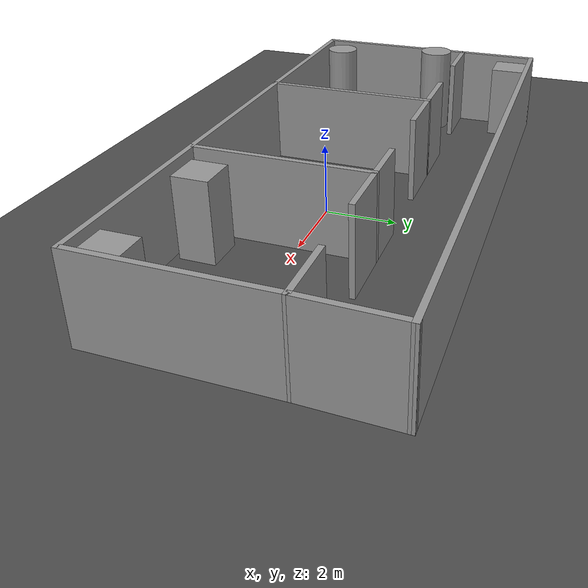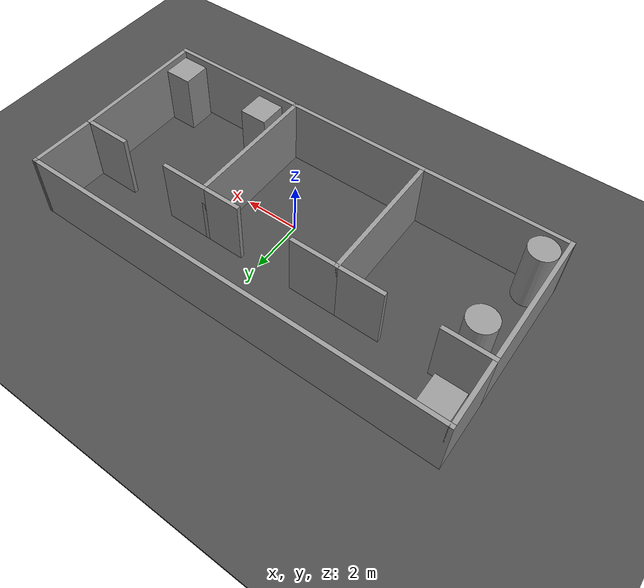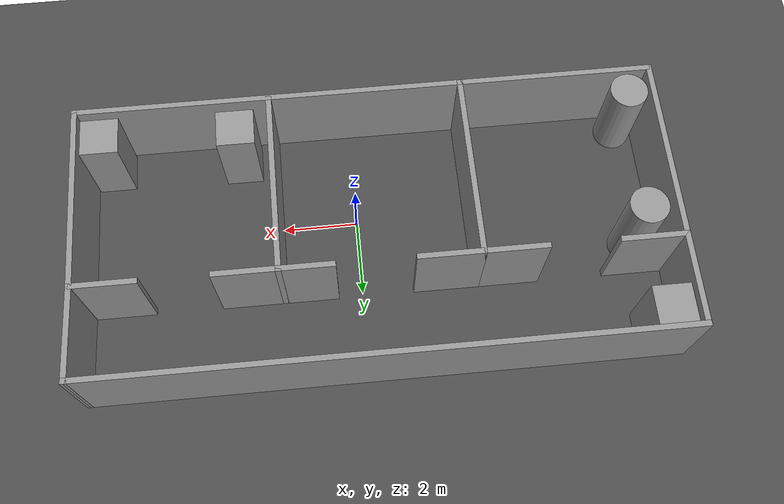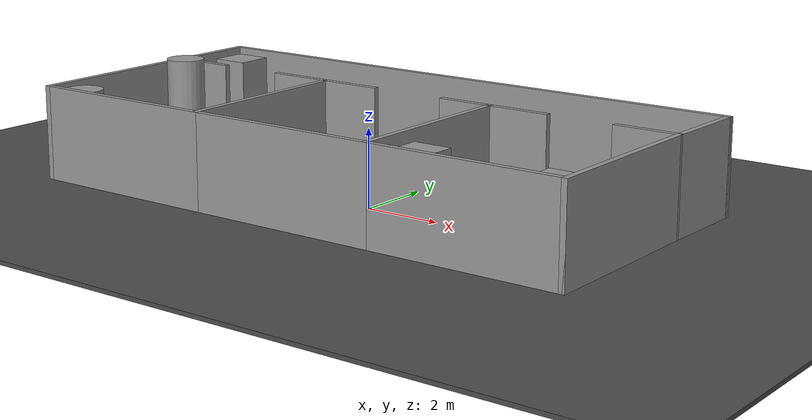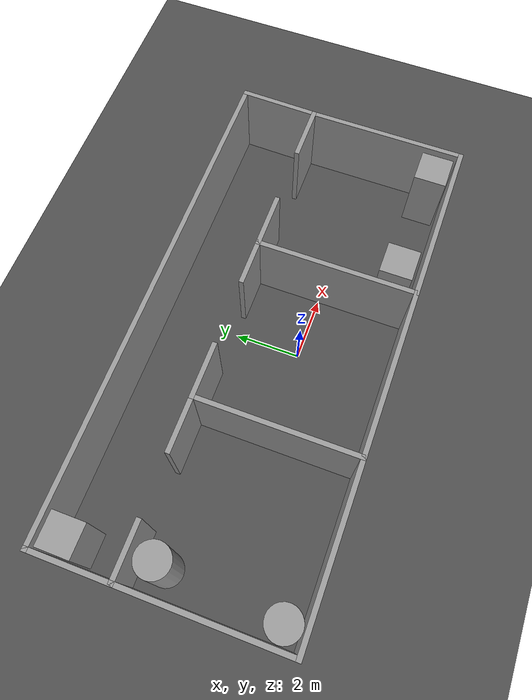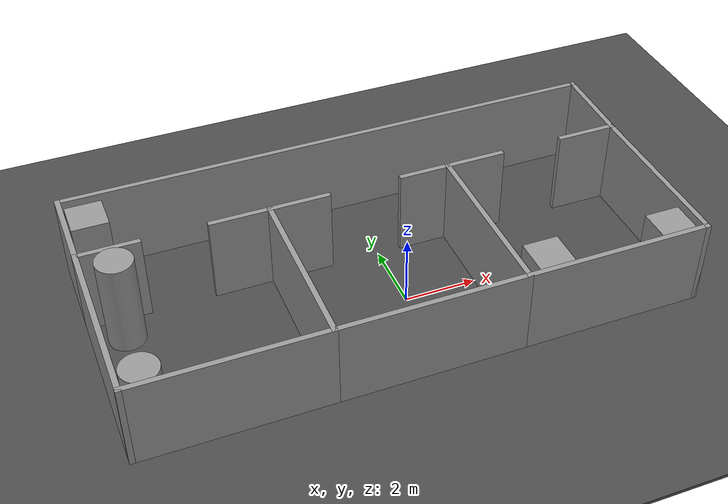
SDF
<sdf version="1.7">
 <world name="default">
  <light name="sun" type="directional">
   <pose>0 0 10 0 -0 0</pose>
   <diffuse>0.8 0.8 0.8 1</diffuse>
   <specular>0.2 0.2 0.2 1</specular>
   <attenuation>
    <range>1000</range>
    <constant>0.9</constant>
    <linear>0.01</linear>
    <quadratic>0.001</quadratic>
   </attenuation>
   <direction>-0.5 0.1 -0.9</direction>
   <spot><inner_angle>0</inner_angle><outer_angle>0</outer_angle><falloff>0</falloff></spot>
  </light>
  <model name="ground_plane">
   <static>1</static>
   <link name="link">
    <collision name="collision">
     <geometry><plane><normal>0 0 1</normal><size>100 100</size></plane></geometry>
     <surface><friction><ode><mu>100</mu><mu2>50</mu2></ode></friction></surface>
    </collision>
    <visual name="visual">
     <cast_shadows>0</cast_shadows>
     <geometry><plane><normal>0 0 1</normal><size>100 100</size></plane></geometry>
     <material>
      <script><uri>file://media/materials/scripts/gazebo.material</uri><name>Gazebo/Grey</name></script>
     </material>
    </visual>
   </link>
  </model>
  <model name="asphalt_plane">
   <static>1</static>
   <link name="link">
    <collision name="collision"><geometry><box><size>200 200 0.1</size></box></geometry></collision>
    <visual name="visual">
     <cast_shadows>0</cast_shadows>
     <geometry><box><size>200 200 0.1</size></box></geometry>
     <material>
      <script>
       <uri>model://asphalt_plane/materials/scripts</uri>
       <uri>model://asphalt_plane/materials/textures</uri>
       <name>vrc/asphalt</name>
      </script>
     </material>
    </visual>
   </link>
  </model>
  <physics name="default_physics" default="0" type="ode">
   <ode>
    <solver>
     <type>quick</type>
     <iters>10</iters>
     <sor>1.3</sor>
     <use_dynamic_moi_rescaling>0</use_dynamic_moi_rescaling>
    </solver>
    <constraints>
     <cfm>0</cfm>
     <erp>0.2</erp>
     <contact_max_correcting_vel>100</contact_max_correcting_vel>
     <contact_surface_layer>0.001</contact_surface_layer>
    </constraints>
   </ode>
   <max_step_size>0.004</max_step_size>
   <real_time_factor>1</real_time_factor>
   <real_time_update_rate>250</real_time_update_rate>
  </physics>
  <model name="Office">
   <pose>-0.45743 0.807928 0 0 -0 0</pose>
   <link name="Wall_18">
    <collision name="Wall_18_Collision">
     <geometry><box><size>5 0.15 2.5</size></box></geometry>
     <pose>0 0 1.25 0 -0 0</pose>
    </collision>
    <visual name="Wall_18_Visual">
     <pose>0 0 1.25 0 -0 0</pose>
     <geometry><box><size>5 0.15 2.5</size></box></geometry>
     <material>
      <script><uri>file://media/materials/scripts/gazebo.material</uri><name>Gazebo/Grey</name></script>
      <ambient>1 1 1 1</ambient>
     </material>
     <meta><layer>0</layer></meta>
    </visual>
    <pose>-2.57579 -1.17579 0 0 -0 1.5708</pose>
   </link>
   <link name="Wall_20">
    <collision name="Wall_20_Collision">
     <geometry><box><size>5 0.15 2.5</size></box></geometry>
     <pose>0 0 1.25 0 -0 0</pose>
    </collision>
    <visual name="Wall_20_Visual">
     <pose>0 0 1.25 0 -0 0</pose>
     <geometry><box><size>5 0.15 2.5</size></box></geometry>
     <material>
      <script><uri>file://media/materials/scripts/gazebo.material</uri><name>Gazebo/Grey</name></script>
      <ambient>1 1 1 1</ambient>
     </material>
     <meta><layer>0</layer></meta>
    </visual>
    <pose>2.52421 -1.17579 0 0 -0 1.5708</pose>
   </link>
   <link name="Wall_21">
    <collision name="Wall_21_Collision">
     <geometry><box><size>1.5 0.15 2.5</size></box></geometry>
     <pose>0 0 1.25 0 -0 0</pose>
    </collision>
    <visual name="Wall_21_Visual">
     <pose>0 0 1.25 0 -0 0</pose>
     <geometry><box><size>1.5 0.15 2.5</size></box></geometry>
     <material>
      <script><uri>file://media/materials/scripts/gazebo.material</uri><name>Gazebo/Grey</name></script>
      <ambient>1 1 1 1</ambient>
     </material>
     <meta><layer>0</layer></meta>
    </visual>
    <pose>1.84921 1.24921 0 0 -0 3.14159</pose>
   </link>
   <link name="Wall_23">
    <collision name="Wall_23_Collision">
     <geometry><box><size>1.75 0.15 2.5</size></box></geometry>
     <pose>0 0 1.25 0 -0 0</pose>
    </collision>
    <visual name="Wall_23_Visual">
     <pose>0 0 1.25 0 -0 0</pose>
     <geometry><box><size>1.75 0.15 2.5</size></box></geometry>
     <material>
      <script><uri>file://media/materials/scripts/gazebo.material</uri><name>Gazebo/Grey</name></script>
      <ambient>1 1 1 1</ambient>
     </material>
     <meta><layer>0</layer></meta>
    </visual>
    <pose>-1.77579 1.24921 0 0 -0 0</pose>
   </link>
   <link name="Wall_26">
    <collision name="Wall_26_Collision">
     <geometry><box><size>5.25 0.15 2.5</size></box></geometry>
     <pose>0 0 1.25 0 -0 0</pose>
    </collision>
    <visual name="Wall_26_Visual">
     <pose>0 0 1.25 0 -0 0</pose>
     <geometry><box><size>5.25 0.15 2.5</size></box></geometry>
     <material>
      <script><uri>file://media/materials/scripts/gazebo.material</uri><name>Gazebo/Grey</name></script>
      <ambient>1 1 1 1</ambient>
     </material>
     <meta><layer>0</layer></meta>
    </visual>
    <pose>-5.12579 -3.60079 0 0 -0 3.14159</pose>
   </link>
   <link name="Wall_27">
    <collision name="Wall_27_Collision">
     <geometry><box><size>5 0.15 2.5</size></box></geometry>
     <pose>0 0 1.25 0 -0 0</pose>
    </collision>
    <visual name="Wall_27_Visual">
     <pose>0 0 1.25 0 -0 0</pose>
     <geometry><box><size>5 0.15 2.5</size></box></geometry>
     <material>
      <script><uri>file://media/materials/scripts/gazebo.material</uri><name>Gazebo/Grey</name></script>
      <ambient>1 1 1 1</ambient>
     </material>
     <meta><layer>0</layer></meta>
    </visual>
    <pose>-7.67579 -1.17579 0 0 -0 1.5708</pose>
   </link>
   <link name="Wall_28">
    <collision name="Wall_28_Collision">
     <geometry><box><size>1.75 0.15 2.5</size></box></geometry>
     <pose>0 0 1.25 0 -0 0</pose>
    </collision>
    <visual name="Wall_28_Visual">
     <pose>0 0 1.25 0 -0 0</pose>
     <geometry><box><size>1.75 0.15 2.5</size></box></geometry>
     <material>
      <script><uri>file://media/materials/scripts/gazebo.material</uri><name>Gazebo/Grey</name></script>
      <ambient>1 1 1 1</ambient>
     </material>
     <meta><layer>0</layer></meta>
    </visual>
    <pose>-6.87579 1.24921 0 0 -0 0</pose>
   </link>
   <link name="Wall_31">
    <collision name="Wall_31_Collision">
     <geometry><box><size>1.75 0.15 2.5</size></box></geometry>
     <pose>0 0 1.25 0 -0 0</pose>
    </collision>
    <visual name="Wall_31_Visual">
     <pose>0 0 1.25 0 -0 0</pose>
     <geometry><box><size>1.75 0.15 2.5</size></box></geometry>
     <material>
      <script><uri>file://media/materials/scripts/gazebo.material</uri><name>Gazebo/Grey</name></script>
      <ambient>1 1 1 1</ambient>
     </material>
     <meta><layer>0</layer></meta>
    </visual>
    <pose>-3.37579 1.24921 0 0 -0 3.14159</pose>
   </link>
   <link name="Wall_33">
    <collision name="Wall_33_Collision">
     <geometry><box><size>5.25 0.15 2.5</size></box></geometry>
     <pose>0 0 1.25 0 -0 0</pose>
    </collision>
    <visual name="Wall_33_Visual">
     <pose>0 0 1.25 0 -0 0</pose>
     <geometry><box><size>5.25 0.15 2.5</size></box></geometry>
     <material>
      <script><uri>file://media/materials/scripts/gazebo.material</uri><name>Gazebo/Grey</name></script>
      <ambient>1 1 1 1</ambient>
     </material>
     <meta><layer>0</layer></meta>
    </visual>
    <pose>5.07421 -3.60079 0 0 -0 0</pose>
   </link>
   <link name="Wall_34">
    <collision name="Wall_34_Collision">
     <geometry><box><size>5 0.15 2.5</size></box></geometry>
     <pose>0 0 1.25 0 -0 0</pose>
    </collision>
    <visual name="Wall_34_Visual">
     <pose>0 0 1.25 0 -0 0</pose>
     <geometry><box><size>5 0.15 2.5</size></box></geometry>
     <material>
      <script><uri>file://media/materials/scripts/gazebo.material</uri><name>Gazebo/Grey</name></script>
      <ambient>1 1 1 1</ambient>
     </material>
     <meta><layer>0</layer></meta>
    </visual>
    <pose>7.62421 -1.17579 0 0 -0 1.5708</pose>
   </link>
   <link name="Wall_35">
    <collision name="Wall_35_Collision">
     <geometry><box><size>1.75 0.15 2.5</size></box></geometry>
     <pose>0 0 1.25 0 -0 0</pose>
    </collision>
    <visual name="Wall_35_Visual">
     <pose>0 0 1.25 0 -0 0</pose>
     <geometry><box><size>1.75 0.15 2.5</size></box></geometry>
     <material>
      <script><uri>file://media/materials/scripts/gazebo.material</uri><name>Gazebo/Grey</name></script>
      <ambient>1 1 1 1</ambient>
     </material>
     <meta><layer>0</layer></meta>
    </visual>
    <pose>6.82421 1.24921 0 0 -0 3.14159</pose>
   </link>
   <link name="Wall_37">
    <collision name="Wall_37_Collision">
     <geometry><box><size>1.75 0.15 2.5</size></box></geometry>
     <pose>0 0 1.25 0 -0 0</pose>
    </collision>
    <visual name="Wall_37_Visual">
     <pose>0 0 1.25 0 -0 0</pose>
     <geometry><box><size>1.75 0.15 2.5</size></box></geometry>
     <material>
      <script><uri>file://media/materials/scripts/gazebo.material</uri><name>Gazebo/Grey</name></script>
      <ambient>1 1 1 1</ambient>
     </material>
     <meta><layer>0</layer></meta>
    </visual>
    <pose>3.32421 1.24921 0 0 -0 0</pose>
   </link>
   <link name="Wall_39">
    <collision name="Wall_39_Collision">
     <geometry><box><size>2.5 0.15 2.5</size></box></geometry>
     <pose>0 0 1.25 0 -0 0</pose>
    </collision>
    <visual name="Wall_39_Visual">
     <pose>0 0 1.25 0 -0 0</pose>
     <geometry><box><size>2.5 0.15 2.5</size></box></geometry>
     <material>
      <script><uri>file://media/materials/scripts/gazebo.material</uri><name>Gazebo/Grey</name></script>
      <ambient>1 1 1 1</ambient>
     </material>
     <meta><layer>0</layer></meta>
    </visual>
    <pose>-7.67579 2.42421 0 0 -0 1.5708</pose>
   </link>
   <link name="Wall_40">
    <collision name="Wall_40_Collision">
     <geometry><box><size>15.5 0.15 2.5</size></box></geometry>
     <pose>0 0 1.25 0 -0 0</pose>
    </collision>
    <visual name="Wall_40_Visual">
     <pose>0 0 1.25 0 -0 0</pose>
     <geometry><box><size>15.5 0.15 2.5</size></box></geometry>
     <material>
      <script><uri>file://media/materials/scripts/gazebo.material</uri><name>Gazebo/Grey</name></script>
      <ambient>1 1 1 1</ambient>
     </material>
     <meta><layer>0</layer></meta>
    </visual>
    <pose>-0.000789 3.59921 0 0 -0 0</pose>
   </link>
   <link name="Wall_41">
    <collision name="Wall_41_Collision">
     <geometry><box><size>2.50053 0.15 2.5</size></box></geometry>
     <pose>0 0 1.25 0 -0 0</pose>
    </collision>
    <visual name="Wall_41_Visual">
     <pose>0 0 1.25 0 -0 0</pose>
     <geometry><box><size>2.50053 0.15 2.5</size></box></geometry>
     <material>
      <script><uri>file://media/materials/scripts/gazebo.material</uri><name>Gazebo/Grey</name></script>
      <ambient>1 1 1 1</ambient>
     </material>
     <meta><layer>0</layer></meta>
    </visual>
    <pose>7.64921 2.42421 0 0 -0 -1.59207</pose>
   </link>
   <link name="Wall_6">
    <collision name="Wall_6_Collision">
     <geometry><box><size>5.25 0.15 2.5</size></box></geometry>
     <pose>0 0 1.25 0 -0 0</pose>
    </collision>
    <visual name="Wall_6_Visual">
     <pose>0 0 1.25 0 -0 0</pose>
     <geometry><box><size>5.25 0.15 2.5</size></box></geometry>
     <material>
      <script><uri>file://media/materials/scripts/gazebo.material</uri><name>Gazebo/Grey</name></script>
      <ambient>1 1 1 1</ambient>
     </material>
     <meta><layer>0</layer></meta>
    </visual>
    <pose>-0.025789 -3.60079 0 0 -0 3.14159</pose>
   </link>
   <static>1</static>
  </model>
  <light name="my_light" type="directional">
   <pose>0 0 30 0 -0 0</pose>
   <diffuse>0.5 0.5 0.5 1</diffuse>
   <specular>0.1 0.1 0.1 1</specular>
   <attenuation><range>200</range></attenuation>
   <direction>0 0 -1</direction>
   <cast_shadows>0</cast_shadows>
   <spot><inner_angle>0</inner_angle><outer_angle>0</outer_angle><falloff>0</falloff></spot>
  </light>
  <gravity>0 0 -9.8066</gravity>
  <magnetic_field>6e-06 2.3e-05 -4.2e-05</magnetic_field>
  <atmosphere type="adiabatic"/>
  <scene><ambient>0.4 0.4 0.4 1</ambient><background>0.7 0.7 0.7 1</background><shadows>1</shadows></scene>
  <spherical_coordinates>
   <surface_model>EARTH_WGS84</surface_model>
   <latitude_deg>0</latitude_deg>
   <longitude_deg>0</longitude_deg>
   <elevation>0</elevation>
   <heading_deg>0</heading_deg>
  </spherical_coordinates>
  <model name="unit_cylinder">
   <pose>-7.2883 1.29483 1.37438 -1.8e-05 -2.3e-05 0.012706</pose>
   <link name="link">
    <inertial>
     <mass>1</mass>
     <inertia><ixx>0.145833</ixx><ixy>0</ixy><ixz>0</ixz><iyy>0.145833</iyy><iyz>0</iyz><izz>0.125</izz></inertia>
    </inertial>
    <collision name="collision">
     <geometry><cylinder><radius>0.5</radius><length>2.64875</length></cylinder></geometry>
    </collision>
    <visual name="visual">
     <geometry><cylinder><radius>0.5</radius><length>2.64875</length></cylinder></geometry>
     <material>
      <script><name>Gazebo/Grey</name><uri>file://media/materials/scripts/gazebo.material</uri></script>
     </material>
    </visual>
   </link>
  </model>
  <model name="unit_box">
   <pose>2.99788 -2.06343 1.19195 2.8e-05 1e-06 -0.001845</pose>
   <link name="link">
    <inertial>
     <mass>1</mass>
     <inertia>
      <ixx>0.166667</ixx>
      <ixy>0</ixy>
      <ixz>0</ixz>
      <iyy>0.166667</iyy>
      <iyz>0</iyz>
      <izz>0.166667</izz>
     </inertia>
    </inertial>
    <collision name="collision"><geometry><box><size>1 1 2.28389</size></box></geometry></collision>
    <visual name="visual">
     <geometry><box><size>1 1 2.28389</size></box></geometry>
     <material>
      <script><name>Gazebo/Grey</name><uri>file://media/materials/scripts/gazebo.material</uri></script>
     </material>
    </visual>
   </link>
  </model>
  <model name="unit_cylinder_0">
   <pose>-7.52516 -2.19414 1.21747 4e-06 1.7e-05 0.001213</pose>
   <link name="link">
    <inertial>
     <mass>1</mass>
     <inertia><ixx>0.145833</ixx><ixy>0</ixy><ixz>0</ixz><iyy>0.145833</iyy><iyz>0</iyz><izz>0.125</izz></inertia>
    </inertial>
    <collision name="collision">
     <geometry><cylinder><radius>0.5</radius><length>2.33494</length></cylinder></geometry>
    </collision>
    <visual name="visual">
     <geometry><cylinder><radius>0.5</radius><length>2.33494</length></cylinder></geometry>
     <material>
      <script><name>Gazebo/Grey</name><uri>file://media/materials/scripts/gazebo.material</uri></script>
     </material>
    </visual>
   </link>
  </model>
  <model name="unit_box_0">
   <pose>-7.51224 3.79026 1.18373 2.8e-05 1e-06 -0.000119</pose>
   <link name="link">
    <inertial>
     <mass>1</mass>
     <inertia>
      <ixx>0.166667</ixx>
      <ixy>0</ixy>
      <ixz>0</ixz>
      <iyy>0.166667</iyy>
      <iyz>0</iyz>
      <izz>0.166667</izz>
     </inertia>
    </inertial>
    <collision name="collision"><geometry><box><size>1 1 2.26745</size></box></geometry></collision>
    <visual name="visual">
     <geometry><box><size>1 1 2.26745</size></box></geometry>
     <material>
      <script><name>Gazebo/Grey</name><uri>file://media/materials/scripts/gazebo.material</uri></script>
     </material>
    </visual>
   </link>
  </model>
  <model name="unit_box_1">
   <pose>6.56127 -2.14054 1.17153 1e-06 1.3e-05 -0.000554</pose>
   <link name="link">
    <inertial>
     <mass>1</mass>
     <inertia>
      <ixx>0.166667</ixx>
      <ixy>0</ixy>
      <ixz>0</ixz>
      <iyy>0.166667</iyy>
      <iyz>0</iyz>
      <izz>0.166667</izz>
     </inertia>
    </inertial>
    <collision name="collision"><geometry><box><size>1 1 2.24308</size></box></geometry></collision>
    <visual name="visual">
     <geometry><box><size>1 1 2.24308</size></box></geometry>
     <material>
      <script><name>Gazebo/Grey</name><uri>file://media/materials/scripts/gazebo.material</uri></script>
     </material>
    </visual>
   </link>
  </model>
 </world>
</sdf>
